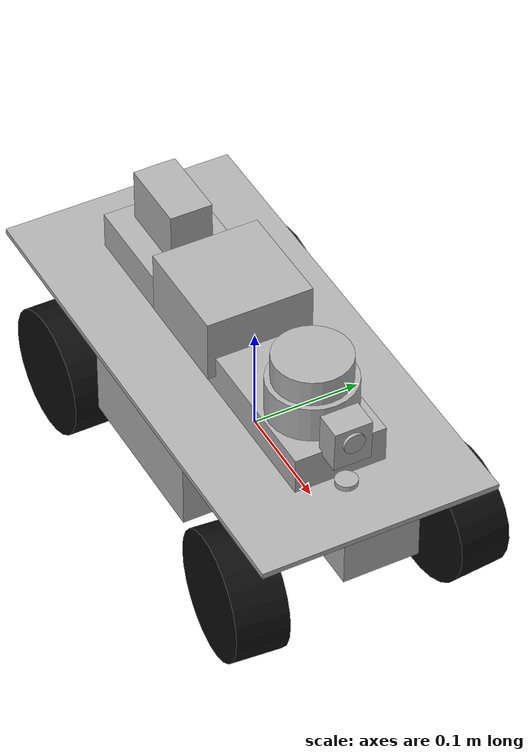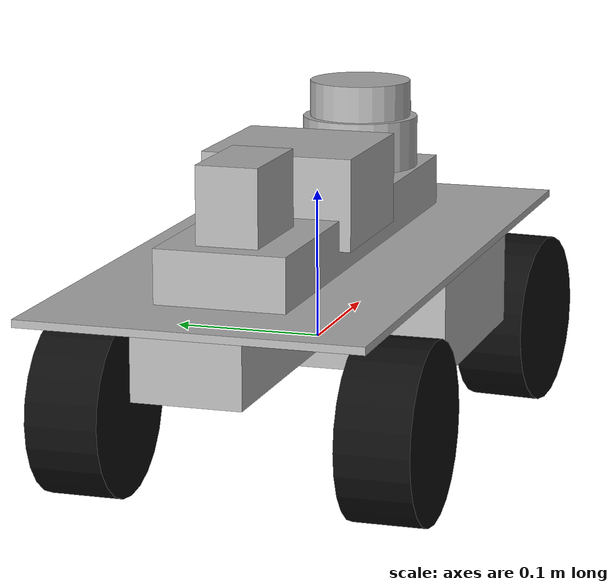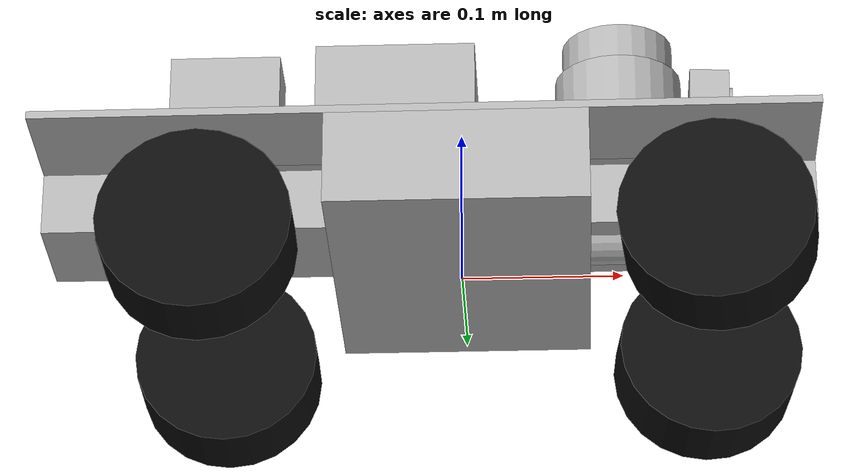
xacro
<?xml version="1.0" encoding="utf-8"?>

<robot xmlns:xacro="http://www.ros.org/wiki/xacro" name="trxbewi_urdf">

  <!-- parameters -->
  <xacro:arg name="use_simulation" default="false" />
  <xacro:arg name="use_controllers" default="true" />

 <!-- Import Common properties-->
  <xacro:include filename="$(find trxbewi_description)/urdf/common_properties.xacro" />

  <!-- Import trxbewi mobile base -->
  <xacro:include filename="$(find trxbewi_description)/urdf/trx4_base.xacro" />

  <!-- Import controller manager and hardware interfaces -->
  <xacro:if value="$(arg use_controllers)">
    <xacro:include filename="$(find trxbewi_control)/xacro/trxbewi.ros2_control.xacro" />
  </xacro:if>

  <!-- Import if use simulation -->
  <xacro:if value="$(arg use_simulation)">
    <xacro:include filename="$(find trxbewi_simulation)/xacro/trxbewi.gazebo.xacro" />
  </xacro:if>

  <link name="base_link">
    <visual>
      <geometry>
          <box size="0.001 0.001 0.001" />
      </geometry>
    </visual>
    <collision>
        <geometry>
            <box size="0.001 0.001 0.001" />
        </geometry>
    </collision>
    <xacro:sphere_inertia m="0.0001" r="0.001"
    xyz="0 0 0" rpy="0 0 0" />
  </link>

  <joint name="$trxbewi_joint" type="fixed">
    <parent link="base_link" />
    <child link="chassis" />
  </joint>

</robot>

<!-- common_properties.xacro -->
<robot xmlns:xacro="http://www.ros.org/wiki/xacro">

    <xacro:property name="gazebo_drift_factor" value="1" />

    <material name="silver">
        <color rgba="0.700 0.700 0.700 1.000" />
    </material>
    <material name="black">
        <color rgba="0 0 0 1" />
    </material>
    <material name="grey">
        <color rgba="0.8 0.8 0.8 1" />
    </material>
    <material name="orange">
        <color rgba="1 0.6 0 1" />
    </material>
    <material name="blue">
        <color rgba="0 0 1 1" />
    </material>
    <material name="green">
        <color rgba="0 1 0 1" />
    </material>
    <material name="white">
        <color rgba="1 1 1 1" />
    </material>
    <material name="red">
        <color rgba="1 0 0 1" />
    </material>
    <material name="invisible">
        <color rgba="0.0 0.0 0.0 0.0"/>
    </material>

    <xacro:macro name="box_inertia" params="m l w h xyz rpy">
        <inertial>
            <origin xyz="${xyz}" rpy="${rpy}" />
            <mass value="${m}" />
            <inertia ixx="${(m/12) * (h*h + l*l)}" ixy="0" ixz="0"
                iyy="${(m/12) * (w*w + l*l)}" iyz="0"
                izz="${(m/12) * (w*w + h*h)}" />
        </inertial>
    </xacro:macro>

    <xacro:macro name="cylinder_inertia" params="m r h xyz rpy">
        <inertial>
            <origin xyz="${xyz}" rpy="${rpy}" />
            <mass value="${m}" />
            <inertia ixx="${(m/12) * (3*r*r + h*h)}" ixy="0" ixz="0"
                iyy="${(m/12) * (3*r*r + h*h)}" iyz="0"
                izz="${(m/2) * (r*r)}" />
        </inertial>
    </xacro:macro>

    <xacro:macro name="sphere_inertia" params="m r xyz rpy">
        <inertial>
            <origin xyz="${xyz}" rpy="${rpy}" />
            <mass value="${m}" />
            <inertia ixx="${(2/5) * m * r * r}" ixy="0" ixz="0"
                iyy="${(2/5) * m * r * r}" iyz="0"
                izz="${(2/5) * m * r * r}" />
        </inertial>
    </xacro:macro>

</robot>

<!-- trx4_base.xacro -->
<robot name="front_axle" xmlns:xacro="http://www.ros.org/wiki/xacro">

  <!-- =======================
       PARAMÈTRES GÉNÉRIQUES
       ======================= -->
  <xacro:property name="track"               value="0.2"/>   <!-- voie (m) -->
  <xacro:property name="wheelbase"           value="0.31"/>
  <xacro:property name="wheel_radius"        value="0.0585"/>
  <xacro:property name="wheel_width"         value="0.048"/>
  <xacro:property name="hub_offset_y"        value="${track/2.0}"/>
  <xacro:property name="upright_height"      value="0.010"/>   <!-- hauteur porte-moyeu -->
  <xacro:property name="susp_travel"         value="0.025"/>   <!-- débattement -->
  <xacro:property name="kingpin_tilt_deg"    value="5.0"/>    <!-- inclinaison (SIA) -->
  <xacro:property name="chassis_length"      value="0.48" />
  <xacro:property name="chassis_width"       value="0.22" />
  <xacro:property name="chassis_height"      value="0.13" />
  <xacro:property name="mat_color"           value="0.7 0.7 0.7 1.0"/>
    <!-- Pose du LiDAR  -->
  <xacro:property name="lidar_xyz" value="0.10 0.00 0.15"/>
  <xacro:property name="lidar_rpy" value="0 0 0"/>

  <!-- ===== CHASSIS (référence du train avant) ===== -->
  <link name="chassis">
    <visual>
      <origin xyz="-0.02 0 0.04" rpy="0 0 0" />
      <geometry> <box size="${chassis_length} 0.07 0.04" /></geometry>
      <material name="metal"><color rgba="${mat_color}"/></material>
    </visual>
    <visual>
      <origin xyz="-0.025 0 0.08" rpy="0 0 0" />
      <geometry> <box size="0.35 0.085 0.04" /></geometry>
      <material name="metal"><color rgba="${mat_color}"/></material>
    </visual>
    <visual>
      <origin xyz="0 0 ${(0.06 / 2)}" rpy="0 0 0" />
      <geometry> <box size="0.16 ${chassis_width} 0.06" /></geometry>
      <material name="metal"><color rgba="${mat_color}"/></material>
    </visual>
    <visual>
      <origin xyz="-0.02 0 ${(0.005 / 2) + 0.06}" rpy="0 0 0" />
      <geometry> <box size="${chassis_length}  ${chassis_width} 0.005" /></geometry>
      <material name="metal"><color rgba="${mat_color}"/></material>
    </visual>
    <visual>
      <origin xyz="-0.15 0 ${0.06 + 0.06}" rpy="0 0 0" />
      <geometry> <box size="0.07 0.04 0.06" /></geometry>
      <material name="metal"><color rgba="${mat_color}"/></material>
    </visual>
    <visual>
      <origin xyz="-0.04 0 ${0.05 + 0.06}" rpy="0 0 0" />
      <geometry> <box size="0.1 0.1 0.06" /></geometry>
      <material name="metal"><color rgba="${mat_color}"/></material>
    </visual>
    <collision>
      <origin xyz="-0.02 0 ${chassis_height / 2}" rpy="0 0 0" />
      <geometry> <box size="${chassis_length} ${chassis_width} ${chassis_height}" /></geometry>
    </collision>
    <inertial>
      <mass value="5.0"/>
      <origin xyz="-0.02 0 ${chassis_height/2}" rpy="0 0 0"/>
      <!-- Ixx = m/12 (W^2 + H^2), Iyy = m/12 (L^2 + H^2), Izz = m/12 (L^2 + W^2) -->
      <inertia
        ixx="${5.0/12.0 * (pow(chassis_width,2) + pow(chassis_height,2))}"
        iyy="${5.0/12.0 * (pow(chassis_length,2) + pow(chassis_height,2))}"
        izz="${5.0/12.0 * (pow(chassis_length,2) + pow(chassis_width,2))}"
        ixy="0" ixz="0" iyz="0"/>
    </inertial>
  </link>

  <!-- CMD -->
    <link name="steering_cmd">
      <visual>
        <geometry><cylinder length="0.02" radius="0.01"/></geometry>
        <material name="metal"><color rgba="${mat_color}"/></material>
      </visual>
    </link>

    <joint name="steering_cmd_joint" type="revolute">
      <parent link="chassis"/>
      <child  link="steering_cmd"/>
      <origin xyz="0.16 0 0.06" rpy="0 0 0"/>
      <axis xyz="0 0 1"/>
      <limit lower="${radians(-35)}" upper="${radians(35)}" effort="800" velocity="${radians(180)}"/>
      <dynamics damping="5.0" friction="0.2"/>
    </joint>

    <link name="traction_cmd">
      <visual>
        <origin xyz="0.0 0 0.0" rpy="${radians(90)} 0 0"/>
        <geometry><cylinder length="0.06" radius="0.02"/></geometry>
        <material name="metal"><color rgba="${mat_color}"/></material>
      </visual>
    </link>

    <joint name="traction_cmd_joint" type="continuous">
      <parent link="chassis"/>
      <child  link="traction_cmd"/>
      <origin xyz="0.08 0 0.03" rpy="0 0 ${radians(90)}"/>
      <axis xyz="0 1 0"/>
      <limit lower="${radians(-35)}" upper="${radians(35)}" effort="800" velocity="${radians(180)}"/>
      <dynamics damping="5.0" friction="0.2"/>
    </joint>

  <xacro:macro name="wheel_side" params="side sign steer:=true axle_x:=0.0">

    <!-- Coulisse de suspension -->
    <link name="${side}_susp_link">
      <inertial><mass value="5.0"/>
        <inertia ixx="0.2" ixy="0" ixz="0" iyy="0.2" iyz="0" izz="0.2"/>
      </inertial>
      <visual>
        <origin xyz="0 0 0" rpy="0 0 0"/>
        <geometry><cylinder length="${susp_travel}" radius="0.0015"/></geometry>
        <material name="metal"><color rgba="${mat_color}"/></material>
      </visual>
      <collision>
        <origin xyz="0 0 0"/>
        <geometry><cylinder length="${susp_travel}" radius="0.0015"/></geometry>
      </collision>
    </link>

    <joint name="${side}_susp_joint" type="prismatic">
      <parent link="chassis"/>
      <child  link="${side}_susp_link"/>
      <!-- placement de l’essieu -->
      <origin xyz="${axle_x} ${sign * hub_offset_y} -0.015" rpy="0 0 0"/>
      <axis xyz="0 0 1"/>
      <limit lower="-${susp_travel/2.0}" upper="${susp_travel/2.0}" effort="5000" velocity="1.0"/>
      <dynamics damping="50.0" friction="0.0"/>
    </joint>

    <!-- Porte-moyeu -->
    <link name="${side}_upright">
      <inertial><mass value="8.0"/>
        <inertia ixx="0.4" ixy="0" ixz="0" iyy="0.5" iyz="0" izz="0.3"/>
      </inertial>
      <visual>
        <geometry><box size="0.02 ${upright_height} ${upright_height}"/></geometry>
        <material name="metal"><color rgba="${mat_color}"/></material>
      </visual>
      <collision><geometry><box size="0.02 ${upright_height} ${upright_height}"/></geometry></collision>
    </link>

    <!-- Pivot de direction (optionnel) -->
    <xacro:if value="${steer}">
      <joint name="${side}_steer_joint" type="revolute">
        <parent link="${side}_susp_link"/>
        <child  link="${side}_upright"/>
        <origin xyz="0 0 0" rpy="0 0 ${radians(sign * kingpin_tilt_deg)}"/>
        <axis xyz="0 0 1"/>
        <limit lower="${radians(-35)}" upper="${radians(35)}" effort="800" velocity="${radians(180)}"/>
        <dynamics damping="5.0" friction="0.2"/>
        <mimic joint="steering_cmd_joint" multiplier="1.0" offset="0.0"/>
      </joint>
    </xacro:if>
    <xacro:unless value="${steer}">
      <!-- pas de direction : liaison rigide -->
      <joint name="${side}_steer_joint" type="fixed">
        <parent link="${side}_susp_link"/>
        <child  link="${side}_upright"/>
      </joint>
    </xacro:unless>

    <!-- Roue -->
    <link name="${side}_wheel">
      <visual>
        <origin xyz="0 0 0" rpy="${radians(90)} 0 0"/>
        <geometry><cylinder length="${wheel_width}" radius="${wheel_radius}"/></geometry>
        <material name="rubber"><color rgba="0.05 0.05 0.05 1.0"/></material>
      </visual>
      <collision>
        <origin xyz="0 0 0" rpy="${radians(90)} 0 0"/>
        <geometry><cylinder length="${wheel_width}" radius="${wheel_radius}"/></geometry>
      </collision>
      <inertial>
        <mass value="0.1"/>
        <!-- Cylindre axe Y : I_y = 1/2 m r^2 ; I_x = I_z = 1/12 m (3 r^2 + L^2) -->
        <inertia
          ixx="${0.1/12.0 * (3*pow(wheel_radius,2) + pow(wheel_width,2))}"
          iyy="${0.5 * 0.1 * pow(wheel_radius,2)}"
          izz="${0.1/12.0 * (3*pow(wheel_radius,2) + pow(wheel_width,2))}"
          ixy="0" ixz="0" iyz="0"/>
      </inertial>
    </link>

    <joint name="${side}_wheel_spin_joint" type="continuous">
      <parent link="${side}_upright"/>
      <child  link="${side}_wheel"/>
      <origin xyz="0 0 0" rpy="0 0 0"/>
      <axis xyz="0 1 0"/>
      <dynamics damping="0.01" friction="0.05"/>
      <mimic joint="traction_cmd_joint" multiplier="1.0" offset="0.0"/>
    </joint>
  </xacro:macro>

  <!-- Lien visuel du LiDAR -->
  <link name="lidar_link">
    <visual>
        <origin xyz="0 0 -0.005" rpy="0 0 0"/>
        <!-- petit cylindre pour symboliser le capteur -->
        <geometry>
        <cylinder length="0.03" radius="0.035"/>
        </geometry>
        <material name="metal"><color rgba="${mat_color}"/></material>
    </visual>
    <visual>
      <origin xyz="0 0 -0.04" rpy="0 0 0"/>
      <!-- petit cylindre pour symboliser le capteur -->
      <geometry>
      <cylinder length="0.05" radius="0.040"/>
      </geometry>
      <material name="metal"><color rgba="${mat_color}"/></material>
    </visual>
    <collision>
        <origin xyz="0 0 0" rpy="0 0 0"/>
        <geometry>
        <cylinder length="0.07" radius="0.04"/>
        </geometry>
    </collision>
    <inertial>
        <mass value="0.2"/>
        <origin xyz="0 0 0" rpy="0 0 0"/>
        <inertia ixx="0.001" iyy="0.001" izz="0.001" ixy="0" ixz="0" iyz="0"/>
    </inertial>
  </link>

  <!-- Joint fixe : base_link -> lidar_link -->
  <joint name="lidar_joint" type="fixed">
    <parent link="chassis"/>
    <child link="lidar_link"/>
    <origin xyz="${lidar_xyz}" rpy="${lidar_rpy}"/>
  </joint>

    <!-- Lien visuel CAM -->
  <link name="cam_link">
    <visual>
        <origin xyz="0 0 0" rpy="0 ${radians(90)} 0"/>
        <!-- petit cylindre pour symboliser le capteur -->
        <geometry>
        <cylinder length="0.005" radius="0.01"/>
        </geometry>
        <material name="metal"><color rgba="${mat_color}"/></material>
    </visual>
    <visual>
      <origin xyz="-0.0125 0 -0.005" rpy="0 0 0" />
      <geometry> <box size="0.025 0.035 0.040" /></geometry>
      <material name="metal"><color rgba="${mat_color}"/></material>
    </visual>
  </link>

  <!-- Joint fixe : base_link -> lidar_link -->
  <joint name="cam_joint" type="fixed">
    <parent link="chassis"/>
    <child link="cam_link"/>
    <origin xyz="0.17 0 0.12" rpy="0 ${radians(2)}  0" />
  </joint>

  <!-- Lien visuel du IMU -->
  <link name="imu_link">
    <visual>
      <geometry> <box size="0.015 0.040 0.01" /></geometry>
      <material name="metal"><color rgba="${mat_color}"/></material>
    </visual>
  </link>

  <!-- Joint fixe : base_link -> lidar_link -->
  <joint name="imu_joint" type="fixed">
    <parent link="chassis"/>
    <child link="imu_link"/>
    <origin xyz="0.025 0 0.09" rpy="0 0 0"/>
  </joint>

  <!-- ====== INSTANCIATIONS AVANT GAUCHE/DROITE ====== -->
  <xacro:wheel_side side="front_left"  sign="-1" steer="true"  axle_x="${wheelbase/2}"/>
  <xacro:wheel_side side="front_right" sign="1"  steer="true"  axle_x="${wheelbase/2}"/>

  <!-- ====== INSTANCIATIONS ARRIERE GAUCHE/DROITE ====== -->
  <xacro:wheel_side side="rear_left"   sign="-1" steer="false" axle_x="-${wheelbase/2}"/>
  <xacro:wheel_side side="rear_right"  sign="1"  steer="false" axle_x="-${wheelbase/2}"/>

<!-- ========= GAZEBO CLASSIC : ressorts/amortisseurs ========= -->

<!-- 4 suspensions (prismatiques Z) : k et c adaptés aux petites masses -->
<gazebo reference="front_left_susp_joint">
  <spring_reference>0.0</spring_reference>      <!-- position de repos (m) -->
  <spring_stiffness>800.0</spring_stiffness>    <!-- k en N/m -->
  <damping>20.0</damping>                       <!-- c en N·s/m -->
</gazebo>
<gazebo reference="front_right_susp_joint">
  <spring_reference>0.0</spring_reference>
  <spring_stiffness>800.0</spring_stiffness>
  <damping>20.0</damping>
</gazebo>
<gazebo reference="rear_left_susp_joint">
  <spring_reference>0.0</spring_reference>
  <spring_stiffness>800.0</spring_stiffness>
  <damping>20.0</damping>
</gazebo>
<gazebo reference="rear_right_susp_joint">
  <spring_reference>0.0</spring_reference>
  <spring_stiffness>800.0</spring_stiffness>
  <damping>20.0</damping>
</gazebo>

<!-- ========= CONTACT PNEUS (friction) ========= -->
<!-- Appliqué au link entier (toutes collisions du link) -->
<gazebo reference="front_left_wheel"><mu1>1.2</mu1><mu2>1.2</mu2><kp>1e5</kp><kd>1.0</kd><minDepth>0.001</minDepth></gazebo>
<gazebo reference="front_right_wheel"><mu1>1.2</mu1><mu2>1.2</mu2><kp>1e5</kp><kd>1.0</kd><minDepth>0.001</minDepth></gazebo>
<gazebo reference="rear_left_wheel"><mu1>1.2</mu1><mu2>1.2</mu2><kp>1e5</kp><kd>1.0</kd><minDepth>0.001</minDepth></gazebo>
<gazebo reference="rear_right_wheel"><mu1>1.2</mu1><mu2>1.2</mu2><kp>1e5</kp><kd>1.0</kd><minDepth>0.001</minDepth></gazebo>

</robot>
